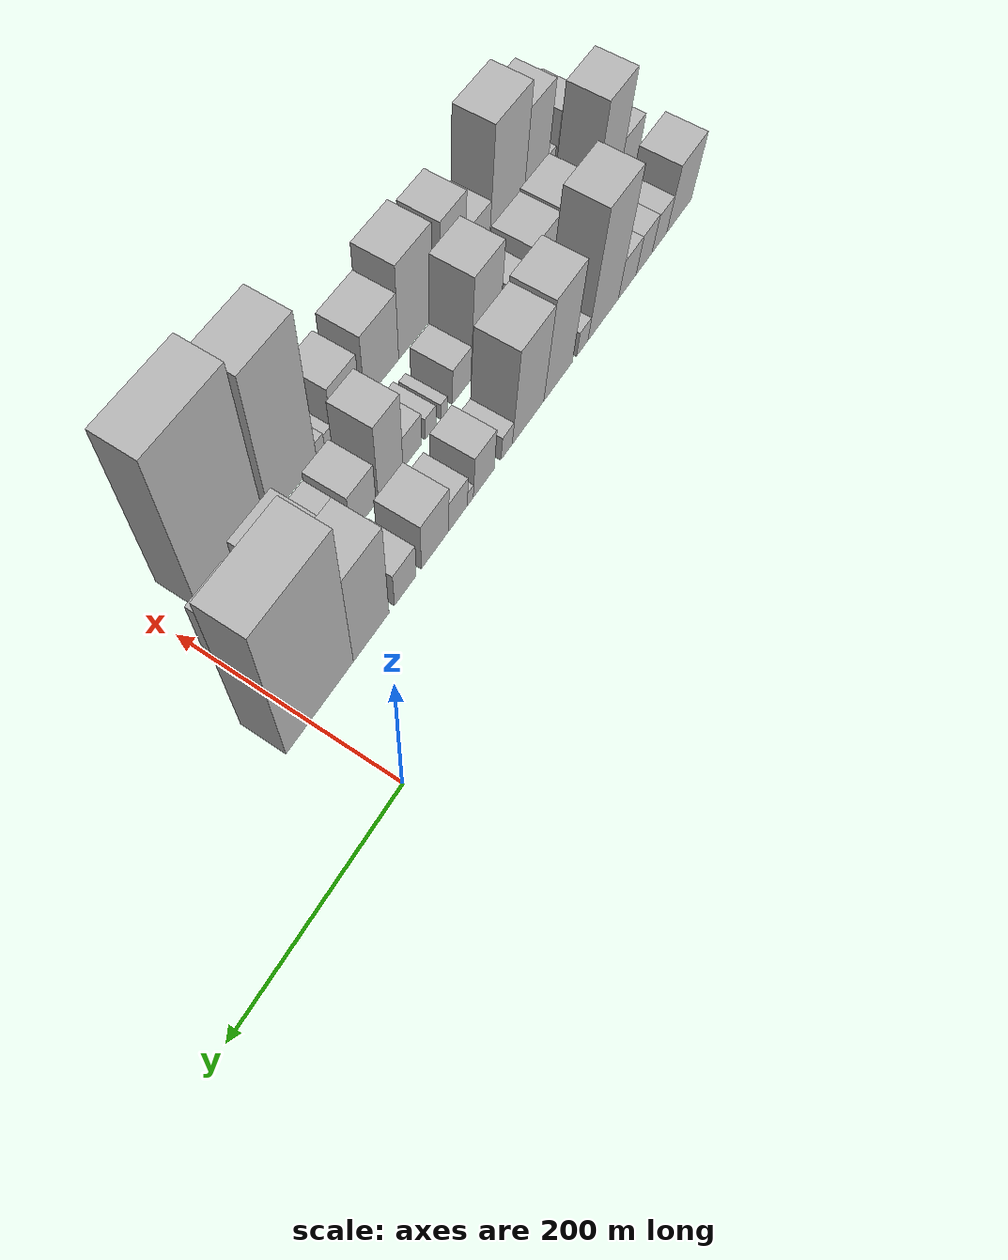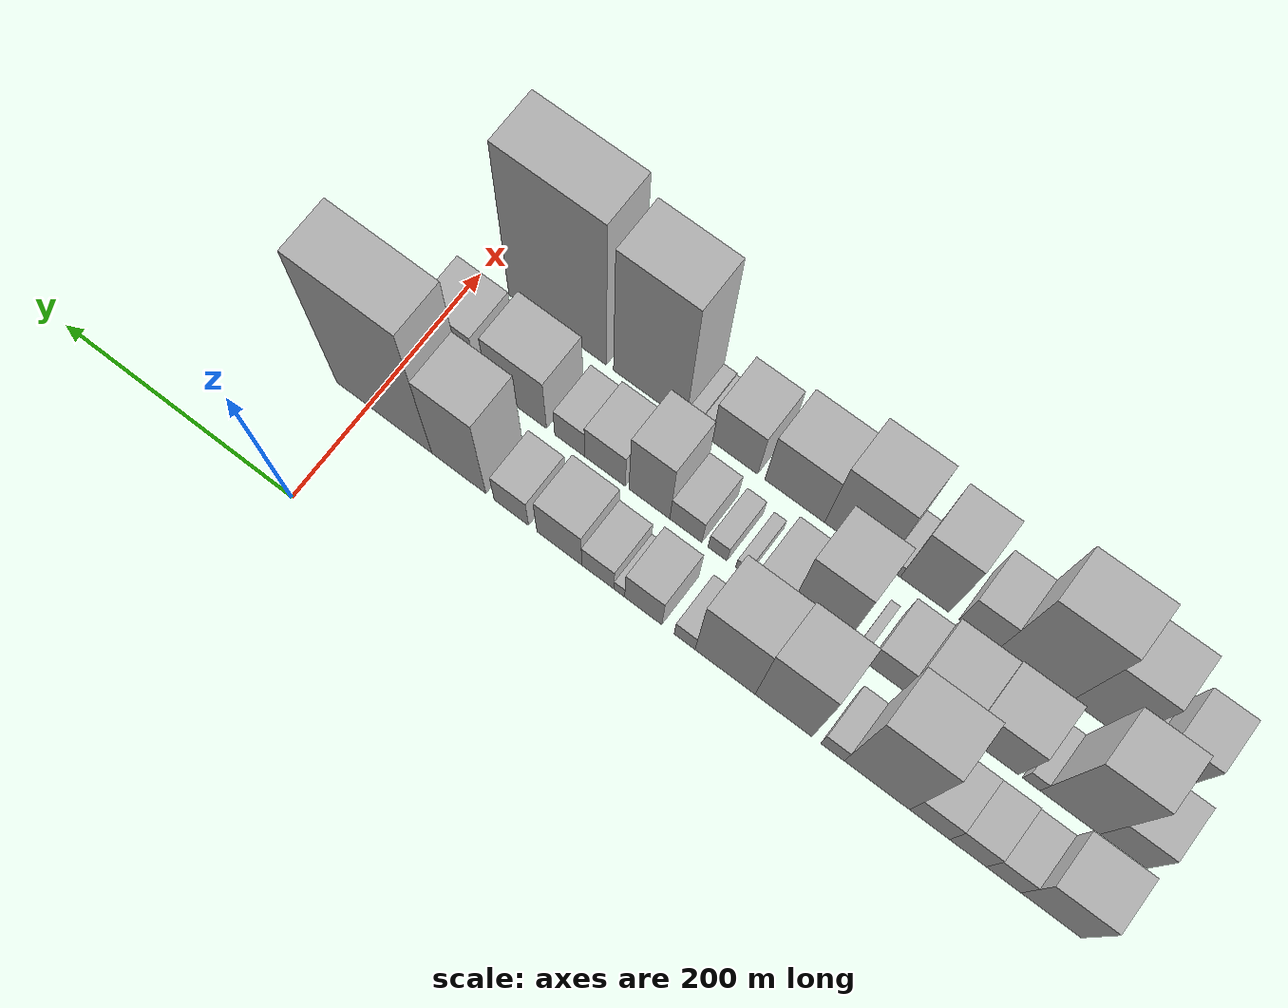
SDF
<sdf version="1.6">
 <world name="default">
  <model name="building_1">
   <static>1</static>
   <pose>100.0000 -548.4914 0 0.000000 0.000000 0.000000</pose>
   <link name="link">
    <pose>0 0 42.00 0 0 0</pose>
    <collision name="collision"><geometry><box><size>40.0000 45.0173 84.0000</size></box></geometry></collision>
    <visual name="visual">
     <cast_shadows>0</cast_shadows>
     <geometry><box><size>40.0000 45.0173 84.0000</size></box></geometry>
     <material>
      <script>
       <uri>model://HANNAS_wall/materials/scripts</uri>
       <uri>model://HANNAS_wall/materials/textures</uri>
       <name>vrc/HANNAS_wall</name>
      </script>
     </material>
    </visual>
   </link>
  </model>
  <model name="building_2">
   <static>1</static>
   <pose>100.0000 -512.8878 0 0.000000 0.000000 0.000000</pose>
   <link name="link">
    <pose>0 0 24.00 0 0 0</pose>
    <collision name="collision"><geometry><box><size>40.0000 26.1899 48.0000</size></box></geometry></collision>
    <visual name="visual">
     <cast_shadows>0</cast_shadows>
     <geometry><box><size>40.0000 26.1899 48.0000</size></box></geometry>
     <material>
      <script>
       <uri>model://HANNAS_wall/materials/scripts</uri>
       <uri>model://HANNAS_wall/materials/textures</uri>
       <name>vrc/HANNAS_wall</name>
      </script>
     </material>
    </visual>
   </link>
  </model>
  <model name="building_3">
   <static>1</static>
   <pose>100.0000 -485.8884 0 0.000000 0.000000 0.000000</pose>
   <link name="link">
    <pose>0 0 25.50 0 0 0</pose>
    <collision name="collision"><geometry><box><size>40.0000 27.8088 51.0000</size></box></geometry></collision>
    <visual name="visual">
     <cast_shadows>0</cast_shadows>
     <geometry><box><size>40.0000 27.8088 51.0000</size></box></geometry>
     <material>
      <script>
       <uri>model://HANNAS_wall/materials/scripts</uri>
       <uri>model://HANNAS_wall/materials/textures</uri>
       <name>vrc/HANNAS_wall</name>
      </script>
     </material>
    </visual>
   </link>
  </model>
  <model name="building_4">
   <static>1</static>
   <pose>100.0000 -456.7219 0 0.000000 0.000000 0.000000</pose>
   <link name="link">
    <pose>0 0 25.50 0 0 0</pose>
    <collision name="collision"><geometry><box><size>40.0000 30.5241 51.0000</size></box></geometry></collision>
    <visual name="visual">
     <cast_shadows>0</cast_shadows>
     <geometry><box><size>40.0000 30.5241 51.0000</size></box></geometry>
     <material>
      <script>
       <uri>model://HANNAS_wall/materials/scripts</uri>
       <uri>model://HANNAS_wall/materials/textures</uri>
       <name>vrc/HANNAS_wall</name>
      </script>
     </material>
    </visual>
   </link>
  </model>
  <model name="building_5">
   <static>1</static>
   <pose>100.0000 -416.1338 0 0.000000 0.000000 0.000000</pose>
   <link name="link">
    <pose>0 0 82.50 0 0 0</pose>
    <collision name="collision"><geometry><box><size>40.0000 50.6523 165.0000</size></box></geometry></collision>
    <visual name="visual">
     <cast_shadows>0</cast_shadows>
     <geometry><box><size>40.0000 50.6523 165.0000</size></box></geometry>
     <material>
      <script>
       <uri>model://HANNAS_wall/materials/scripts</uri>
       <uri>model://HANNAS_wall/materials/textures</uri>
       <name>vrc/HANNAS_wall</name>
      </script>
     </material>
    </visual>
   </link>
  </model>
  <model name="building_6">
   <static>1</static>
   <pose>100.0000 -381.6510 0 0.000000 0.000000 0.000000</pose>
   <link name="link">
    <pose>0 0 16.50 0 0 0</pose>
    <collision name="collision"><geometry><box><size>40.0000 18.3132 33.0000</size></box></geometry></collision>
    <visual name="visual">
     <cast_shadows>0</cast_shadows>
     <geometry><box><size>40.0000 18.3132 33.0000</size></box></geometry>
     <material>
      <script>
       <uri>model://HANNAS_wall/materials/scripts</uri>
       <uri>model://HANNAS_wall/materials/textures</uri>
       <name>vrc/HANNAS_wall</name>
      </script>
     </material>
    </visual>
   </link>
  </model>
  <model name="building_7">
   <static>1</static>
   <pose>100.0000 -343.0334 0 0.000000 0.000000 0.000000</pose>
   <link name="link">
    <pose>0 0 67.50 0 0 0</pose>
    <collision name="collision"><geometry><box><size>40.0000 44.9220 135.0000</size></box></geometry></collision>
    <visual name="visual">
     <cast_shadows>0</cast_shadows>
     <geometry><box><size>40.0000 44.9220 135.0000</size></box></geometry>
     <material>
      <script>
       <uri>model://HANNAS_wall/materials/scripts</uri>
       <uri>model://HANNAS_wall/materials/textures</uri>
       <name>vrc/HANNAS_wall</name>
      </script>
     </material>
    </visual>
   </link>
  </model>
  <model name="building_8">
   <static>1</static>
   <pose>100.0000 -296.5302 0 0.000000 0.000000 0.000000</pose>
   <link name="link">
    <pose>0 0 64.50 0 0 0</pose>
    <collision name="collision"><geometry><box><size>40.0000 48.0845 129.0000</size></box></geometry></collision>
    <visual name="visual">
     <cast_shadows>0</cast_shadows>
     <geometry><box><size>40.0000 48.0845 129.0000</size></box></geometry>
     <material>
      <script>
       <uri>model://HANNAS_wall/materials/scripts</uri>
       <uri>model://HANNAS_wall/materials/textures</uri>
       <name>vrc/HANNAS_wall</name>
      </script>
     </material>
    </visual>
   </link>
  </model>
  <model name="building_9">
   <static>1</static>
   <pose>100.0000 -264.0532 0 0.000000 0.000000 0.000000</pose>
   <link name="link">
    <pose>0 0 16.50 0 0 0</pose>
    <collision name="collision"><geometry><box><size>40.0000 16.8695 33.0000</size></box></geometry></collision>
    <visual name="visual">
     <cast_shadows>0</cast_shadows>
     <geometry><box><size>40.0000 16.8695 33.0000</size></box></geometry>
     <material>
      <script>
       <uri>model://HANNAS_wall/materials/scripts</uri>
       <uri>model://HANNAS_wall/materials/textures</uri>
       <name>vrc/HANNAS_wall</name>
      </script>
     </material>
    </visual>
   </link>
  </model>
  <model name="building_10">
   <static>1</static>
   <pose>100.0000 -230.4806 0 0.000000 0.000000 0.000000</pose>
   <link name="link">
    <pose>0 0 30.00 0 0 0</pose>
    <collision name="collision"><geometry><box><size>40.0000 30.2757 60.0000</size></box></geometry></collision>
    <visual name="visual">
     <cast_shadows>0</cast_shadows>
     <geometry><box><size>40.0000 30.2757 60.0000</size></box></geometry>
     <material>
      <script>
       <uri>model://HANNAS_wall/materials/scripts</uri>
       <uri>model://HANNAS_wall/materials/textures</uri>
       <name>vrc/HANNAS_wall</name>
      </script>
     </material>
    </visual>
   </link>
  </model>
  <model name="building_11">
   <static>1</static>
   <pose>100.0000 -211.0140 0 0.000000 0.000000 0.000000</pose>
   <link name="link">
    <pose>0 0 10.50 0 0 0</pose>
    <collision name="collision"><geometry><box><size>40.0000 8.6574 21.0000</size></box></geometry></collision>
    <visual name="visual">
     <cast_shadows>0</cast_shadows>
     <geometry><box><size>40.0000 8.6574 21.0000</size></box></geometry>
     <material>
      <script>
       <uri>model://HANNAS_wall/materials/scripts</uri>
       <uri>model://HANNAS_wall/materials/textures</uri>
       <name>vrc/HANNAS_wall</name>
      </script>
     </material>
    </visual>
   </link>
  </model>
  <model name="building_12">
   <static>1</static>
   <pose>100.0000 -193.4829 0 0.000000 0.000000 0.000000</pose>
   <link name="link">
    <pose>0 0 22.50 0 0 0</pose>
    <collision name="collision"><geometry><box><size>40.0000 26.4049 45.0000</size></box></geometry></collision>
    <visual name="visual">
     <cast_shadows>0</cast_shadows>
     <geometry><box><size>40.0000 26.4049 45.0000</size></box></geometry>
     <material>
      <script>
       <uri>model://HANNAS_wall/materials/scripts</uri>
       <uri>model://HANNAS_wall/materials/textures</uri>
       <name>vrc/HANNAS_wall</name>
      </script>
     </material>
    </visual>
   </link>
  </model>
  <model name="building_13">
   <static>1</static>
   <pose>100.0000 -161.5967 0 0.000000 0.000000 0.000000</pose>
   <link name="link">
    <pose>0 0 34.50 0 0 0</pose>
    <collision name="collision"><geometry><box><size>40.0000 37.3676 69.0000</size></box></geometry></collision>
    <visual name="visual">
     <cast_shadows>0</cast_shadows>
     <geometry><box><size>40.0000 37.3676 69.0000</size></box></geometry>
     <material>
      <script>
       <uri>model://HANNAS_wall/materials/scripts</uri>
       <uri>model://HANNAS_wall/materials/textures</uri>
       <name>vrc/HANNAS_wall</name>
      </script>
     </material>
    </visual>
   </link>
  </model>
  <model name="building_14">
   <static>1</static>
   <pose>100.0000 -121.5014 0 0.000000 0.000000 0.000000</pose>
   <link name="link">
    <pose>0 0 25.50 0 0 0</pose>
    <collision name="collision"><geometry><box><size>40.0000 28.8231 51.0000</size></box></geometry></collision>
    <visual name="visual">
     <cast_shadows>0</cast_shadows>
     <geometry><box><size>40.0000 28.8231 51.0000</size></box></geometry>
     <material>
      <script>
       <uri>model://HANNAS_wall/materials/scripts</uri>
       <uri>model://HANNAS_wall/materials/textures</uri>
       <name>vrc/HANNAS_wall</name>
      </script>
     </material>
    </visual>
   </link>
  </model>
  <model name="building_15">
   <static>1</static>
   <pose>100.0000 -77.2038 0 0.000000 0.000000 0.000000</pose>
   <link name="link">
    <pose>0 0 70.50 0 0 0</pose>
    <collision name="collision"><geometry><box><size>40.0000 45.7720 141.0000</size></box></geometry></collision>
    <visual name="visual">
     <cast_shadows>0</cast_shadows>
     <geometry><box><size>40.0000 45.7720 141.0000</size></box></geometry>
     <material>
      <script>
       <uri>model://HANNAS_wall/materials/scripts</uri>
       <uri>model://HANNAS_wall/materials/textures</uri>
       <name>vrc/HANNAS_wall</name>
      </script>
     </material>
    </visual>
   </link>
  </model>
  <model name="building_16">
   <static>1</static>
   <pose>100.0000 -13.2444 0 0.000000 0.000000 0.000000</pose>
   <link name="link">
    <pose>0 0 108.00 0 0 0</pose>
    <collision name="collision"><geometry><box><size>40.0000 82.1468 216.0000</size></box></geometry></collision>
    <visual name="visual">
     <cast_shadows>0</cast_shadows>
     <geometry><box><size>40.0000 82.1468 216.0000</size></box></geometry>
     <material>
      <script>
       <uri>model://HANNAS_wall/materials/scripts</uri>
       <uri>model://HANNAS_wall/materials/textures</uri>
       <name>vrc/HANNAS_wall</name>
      </script>
     </material>
    </visual>
   </link>
  </model>
  <model name="building_30">
   <static>1</static>
   <pose>160.0000 -562.5700 0 0.000000 0.000000 0.000000</pose>
   <link name="link">
    <pose>0 0 31.50 0 0 0</pose>
    <collision name="collision"><geometry><box><size>40.0000 34.8599 63.0000</size></box></geometry></collision>
    <visual name="visual">
     <cast_shadows>0</cast_shadows>
     <geometry><box><size>40.0000 34.8599 63.0000</size></box></geometry>
     <material>
      <script>
       <uri>model://HANNAS_wall/materials/scripts</uri>
       <uri>model://HANNAS_wall/materials/textures</uri>
       <name>vrc/HANNAS_wall</name>
      </script>
     </material>
    </visual>
   </link>
  </model>
  <model name="building_31">
   <static>1</static>
   <pose>160.0000 -522.5923 0 0.000000 0.000000 0.000000</pose>
   <link name="link">
    <pose>0 0 72.00 0 0 0</pose>
    <collision name="collision"><geometry><box><size>40.0000 45.0955 144.0000</size></box></geometry></collision>
    <visual name="visual">
     <cast_shadows>0</cast_shadows>
     <geometry><box><size>40.0000 45.0955 144.0000</size></box></geometry>
     <material>
      <script>
       <uri>model://HANNAS_wall/materials/scripts</uri>
       <uri>model://HANNAS_wall/materials/textures</uri>
       <name>vrc/HANNAS_wall</name>
      </script>
     </material>
    </visual>
   </link>
  </model>
  <model name="building_32">
   <static>1</static>
   <pose>160.0000 -493.3652 0 0.000000 0.000000 0.000000</pose>
   <link name="link">
    <pose>0 0 13.50 0 0 0</pose>
    <collision name="collision"><geometry><box><size>40.0000 13.3587 27.0000</size></box></geometry></collision>
    <visual name="visual">
     <cast_shadows>0</cast_shadows>
     <geometry><box><size>40.0000 13.3587 27.0000</size></box></geometry>
     <material>
      <script>
       <uri>model://HANNAS_wall/materials/scripts</uri>
       <uri>model://HANNAS_wall/materials/textures</uri>
       <name>vrc/HANNAS_wall</name>
      </script>
     </material>
    </visual>
   </link>
  </model>
  <model name="building_33">
   <static>1</static>
   <pose>160.0000 -461.1249 0 0.000000 0.000000 0.000000</pose>
   <link name="link">
    <pose>0 0 39.00 0 0 0</pose>
    <collision name="collision"><geometry><box><size>40.0000 45.1219 78.0000</size></box></geometry></collision>
    <visual name="visual">
     <cast_shadows>0</cast_shadows>
     <geometry><box><size>40.0000 45.1219 78.0000</size></box></geometry>
     <material>
      <script>
       <uri>model://HANNAS_wall/materials/scripts</uri>
       <uri>model://HANNAS_wall/materials/textures</uri>
       <name>vrc/HANNAS_wall</name>
      </script>
     </material>
    </visual>
   </link>
  </model>
  <model name="building_34">
   <static>1</static>
   <pose>160.0000 -416.7266 0 0.000000 0.000000 0.000000</pose>
   <link name="link">
    <pose>0 0 37.50 0 0 0</pose>
    <collision name="collision"><geometry><box><size>40.0000 43.6748 75.0000</size></box></geometry></collision>
    <visual name="visual">
     <cast_shadows>0</cast_shadows>
     <geometry><box><size>40.0000 43.6748 75.0000</size></box></geometry>
     <material>
      <script>
       <uri>model://HANNAS_wall/materials/scripts</uri>
       <uri>model://HANNAS_wall/materials/textures</uri>
       <name>vrc/HANNAS_wall</name>
      </script>
     </material>
    </visual>
   </link>
  </model>
  <model name="building_35">
   <static>1</static>
   <pose>160.0000 -380.7941 0 0.000000 0.000000 0.000000</pose>
   <link name="link">
    <pose>0 0 27.00 0 0 0</pose>
    <collision name="collision"><geometry><box><size>40.0000 28.1901 54.0000</size></box></geometry></collision>
    <visual name="visual">
     <cast_shadows>0</cast_shadows>
     <geometry><box><size>40.0000 28.1901 54.0000</size></box></geometry>
     <material>
      <script>
       <uri>model://HANNAS_wall/materials/scripts</uri>
       <uri>model://HANNAS_wall/materials/textures</uri>
       <name>vrc/HANNAS_wall</name>
      </script>
     </material>
    </visual>
   </link>
  </model>
  <model name="building_36">
   <static>1</static>
   <pose>160.0000 -358.0864 0 0.000000 0.000000 0.000000</pose>
   <link name="link">
    <pose>0 0 7.50 0 0 0</pose>
    <collision name="collision"><geometry><box><size>40.0000 7.2253 15.0000</size></box></geometry></collision>
    <visual name="visual">
     <cast_shadows>0</cast_shadows>
     <geometry><box><size>40.0000 7.2253 15.0000</size></box></geometry>
     <material>
      <script>
       <uri>model://HANNAS_wall/materials/scripts</uri>
       <uri>model://HANNAS_wall/materials/textures</uri>
       <name>vrc/HANNAS_wall</name>
      </script>
     </material>
    </visual>
   </link>
  </model>
  <model name="building_37">
   <static>1</static>
   <pose>160.0000 -326.3015 0 0.000000 0.000000 0.000000</pose>
   <link name="link">
    <pose>0 0 67.50 0 0 0</pose>
    <collision name="collision"><geometry><box><size>40.0000 42.3445 135.0000</size></box></geometry></collision>
    <visual name="visual">
     <cast_shadows>0</cast_shadows>
     <geometry><box><size>40.0000 42.3445 135.0000</size></box></geometry>
     <material>
      <script>
       <uri>model://HANNAS_wall/materials/scripts</uri>
       <uri>model://HANNAS_wall/materials/textures</uri>
       <name>vrc/HANNAS_wall</name>
      </script>
     </material>
    </visual>
   </link>
  </model>
  <model name="building_38">
   <static>1</static>
   <pose>160.0000 -291.4455 0 0.000000 0.000000 0.000000</pose>
   <link name="link">
    <pose>0 0 24.00 0 0 0</pose>
    <collision name="collision"><geometry><box><size>40.0000 27.3674 48.0000</size></box></geometry></collision>
    <visual name="visual">
     <cast_shadows>0</cast_shadows>
     <geometry><box><size>40.0000 27.3674 48.0000</size></box></geometry>
     <material>
      <script>
       <uri>model://HANNAS_wall/materials/scripts</uri>
       <uri>model://HANNAS_wall/materials/textures</uri>
       <name>vrc/HANNAS_wall</name>
      </script>
     </material>
    </visual>
   </link>
  </model>
  <model name="building_39">
   <static>1</static>
   <pose>160.0000 -265.8686 0 0.000000 0.000000 0.000000</pose>
   <link name="link">
    <pose>0 0 10.50 0 0 0</pose>
    <collision name="collision"><geometry><box><size>40.0000 9.7864 21.0000</size></box></geometry></collision>
    <visual name="visual">
     <cast_shadows>0</cast_shadows>
     <geometry><box><size>40.0000 9.7864 21.0000</size></box></geometry>
     <material>
      <script>
       <uri>model://HANNAS_wall/materials/scripts</uri>
       <uri>model://HANNAS_wall/materials/textures</uri>
       <name>vrc/HANNAS_wall</name>
      </script>
     </material>
    </visual>
   </link>
  </model>
  <model name="building_40">
   <static>1</static>
   <pose>160.0000 -246.2272 0 0.000000 0.000000 0.000000</pose>
   <link name="link">
    <pose>0 0 15.00 0 0 0</pose>
    <collision name="collision"><geometry><box><size>40.0000 15.4964 30.0000</size></box></geometry></collision>
    <visual name="visual">
     <cast_shadows>0</cast_shadows>
     <geometry><box><size>40.0000 15.4964 30.0000</size></box></geometry>
     <material>
      <script>
       <uri>model://HANNAS_wall/materials/scripts</uri>
       <uri>model://HANNAS_wall/materials/textures</uri>
       <name>vrc/HANNAS_wall</name>
      </script>
     </material>
    </visual>
   </link>
  </model>
  <model name="building_41">
   <static>1</static>
   <pose>160.0000 -220.2625 0 0.000000 0.000000 0.000000</pose>
   <link name="link">
    <pose>0 0 22.50 0 0 0</pose>
    <collision name="collision"><geometry><box><size>40.0000 26.4329 45.0000</size></box></geometry></collision>
    <visual name="visual">
     <cast_shadows>0</cast_shadows>
     <geometry><box><size>40.0000 26.4329 45.0000</size></box></geometry>
     <material>
      <script>
       <uri>model://HANNAS_wall/materials/scripts</uri>
       <uri>model://HANNAS_wall/materials/textures</uri>
       <name>vrc/HANNAS_wall</name>
      </script>
     </material>
    </visual>
   </link>
  </model>
  <model name="building_42">
   <static>1</static>
   <pose>160.0000 -190.1142 0 0.000000 0.000000 0.000000</pose>
   <link name="link">
    <pose>0 0 54.00 0 0 0</pose>
    <collision name="collision"><geometry><box><size>40.0000 33.8638 108.0000</size></box></geometry></collision>
    <visual name="visual">
     <cast_shadows>0</cast_shadows>
     <geometry><box><size>40.0000 33.8638 108.0000</size></box></geometry>
     <material>
      <script>
       <uri>model://HANNAS_wall/materials/scripts</uri>
       <uri>model://HANNAS_wall/materials/textures</uri>
       <name>vrc/HANNAS_wall</name>
      </script>
     </material>
    </visual>
   </link>
  </model>
  <model name="building_43">
   <static>1</static>
   <pose>160.0000 -153.3851 0 0.000000 0.000000 0.000000</pose>
   <link name="link">
    <pose>0 0 30.00 0 0 0</pose>
    <collision name="collision"><geometry><box><size>40.0000 33.5944 60.0000</size></box></geometry></collision>
    <visual name="visual">
     <cast_shadows>0</cast_shadows>
     <geometry><box><size>40.0000 33.5944 60.0000</size></box></geometry>
     <material>
      <script>
       <uri>model://HANNAS_wall/materials/scripts</uri>
       <uri>model://HANNAS_wall/materials/textures</uri>
       <name>vrc/HANNAS_wall</name>
      </script>
     </material>
    </visual>
   </link>
  </model>
  <model name="building_44">
   <static>1</static>
   <pose>160.0000 -123.8893 0 0.000000 0.000000 0.000000</pose>
   <link name="link">
    <pose>0 0 24.00 0 0 0</pose>
    <collision name="collision"><geometry><box><size>40.0000 25.3971 48.0000</size></box></geometry></collision>
    <visual name="visual">
     <cast_shadows>0</cast_shadows>
     <geometry><box><size>40.0000 25.3971 48.0000</size></box></geometry>
     <material>
      <script>
       <uri>model://HANNAS_wall/materials/scripts</uri>
       <uri>model://HANNAS_wall/materials/textures</uri>
       <name>vrc/HANNAS_wall</name>
      </script>
     </material>
    </visual>
   </link>
  </model>
  <model name="building_45">
   <static>1</static>
   <pose>160.0000 -79.0148 0 0.000000 0.000000 0.000000</pose>
   <link name="link">
    <pose>0 0 43.50 0 0 0</pose>
    <collision name="collision"><geometry><box><size>40.0000 50.3519 87.0000</size></box></geometry></collision>
    <visual name="visual">
     <cast_shadows>0</cast_shadows>
     <geometry><box><size>40.0000 50.3519 87.0000</size></box></geometry>
     <material>
      <script>
       <uri>model://HANNAS_wall/materials/scripts</uri>
       <uri>model://HANNAS_wall/materials/textures</uri>
       <name>vrc/HANNAS_wall</name>
      </script>
     </material>
    </visual>
   </link>
  </model>
  <model name="building_46">
   <static>1</static>
   <pose>160.0000 -24.1248 0 0.000000 0.000000 0.000000</pose>
   <link name="link">
    <pose>0 0 36.00 0 0 0</pose>
    <collision name="collision"><geometry><box><size>40.0000 41.4281 72.0000</size></box></geometry></collision>
    <visual name="visual">
     <cast_shadows>0</cast_shadows>
     <geometry><box><size>40.0000 41.4281 72.0000</size></box></geometry>
     <material>
      <script>
       <uri>model://HANNAS_wall/materials/scripts</uri>
       <uri>model://HANNAS_wall/materials/textures</uri>
       <name>vrc/HANNAS_wall</name>
      </script>
     </material>
    </visual>
   </link>
  </model>
  <model name="building_60">
   <static>1</static>
   <pose>220.0000 -556.4989 0 0.000000 0.000000 0.000000</pose>
   <link name="link">
    <pose>0 0 33.00 0 0 0</pose>
    <collision name="collision"><geometry><box><size>40.0000 33.0022 66.0000</size></box></geometry></collision>
    <visual name="visual">
     <cast_shadows>0</cast_shadows>
     <geometry><box><size>40.0000 33.0022 66.0000</size></box></geometry>
     <material>
      <script>
       <uri>model://HANNAS_wall/materials/scripts</uri>
       <uri>model://HANNAS_wall/materials/textures</uri>
       <name>vrc/HANNAS_wall</name>
      </script>
     </material>
    </visual>
   </link>
  </model>
  <model name="building_61">
   <static>1</static>
   <pose>220.0000 -530.4347 0 0.000000 0.000000 0.000000</pose>
   <link name="link">
    <pose>0 0 13.50 0 0 0</pose>
    <collision name="collision"><geometry><box><size>40.0000 13.1262 27.0000</size></box></geometry></collision>
    <visual name="visual">
     <cast_shadows>0</cast_shadows>
     <geometry><box><size>40.0000 13.1262 27.0000</size></box></geometry>
     <material>
      <script>
       <uri>model://HANNAS_wall/materials/scripts</uri>
       <uri>model://HANNAS_wall/materials/textures</uri>
       <name>vrc/HANNAS_wall</name>
      </script>
     </material>
    </visual>
   </link>
  </model>
  <model name="building_62">
   <static>1</static>
   <pose>220.0000 -503.9881 0 0.000000 0.000000 0.000000</pose>
   <link name="link">
    <pose>0 0 58.50 0 0 0</pose>
    <collision name="collision"><geometry><box><size>40.0000 39.7670 117.0000</size></box></geometry></collision>
    <visual name="visual">
     <cast_shadows>0</cast_shadows>
     <geometry><box><size>40.0000 39.7670 117.0000</size></box></geometry>
     <material>
      <script>
       <uri>model://HANNAS_wall/materials/scripts</uri>
       <uri>model://HANNAS_wall/materials/textures</uri>
       <name>vrc/HANNAS_wall</name>
      </script>
     </material>
    </visual>
   </link>
  </model>
  <model name="building_63">
   <static>1</static>
   <pose>220.0000 -456.1946 0 0.000000 0.000000 0.000000</pose>
   <link name="link">
    <pose>0 0 73.50 0 0 0</pose>
    <collision name="collision"><geometry><box><size>40.0000 55.8201 147.0000</size></box></geometry></collision>
    <visual name="visual">
     <cast_shadows>0</cast_shadows>
     <geometry><box><size>40.0000 55.8201 147.0000</size></box></geometry>
     <material>
      <script>
       <uri>model://HANNAS_wall/materials/scripts</uri>
       <uri>model://HANNAS_wall/materials/textures</uri>
       <name>vrc/HANNAS_wall</name>
      </script>
     </material>
    </visual>
   </link>
  </model>
  <model name="building_64">
   <static>1</static>
   <pose>220.0000 -412.5962 0 0.000000 0.000000 0.000000</pose>
   <link name="link">
    <pose>0 0 30.00 0 0 0</pose>
    <collision name="collision"><geometry><box><size>40.0000 31.3767 60.0000</size></box></geometry></collision>
    <visual name="visual">
     <cast_shadows>0</cast_shadows>
     <geometry><box><size>40.0000 31.3767 60.0000</size></box></geometry>
     <material>
      <script>
       <uri>model://HANNAS_wall/materials/scripts</uri>
       <uri>model://HANNAS_wall/materials/textures</uri>
       <name>vrc/HANNAS_wall</name>
      </script>
     </material>
    </visual>
   </link>
  </model>
  <model name="building_65">
   <static>1</static>
   <pose>220.0000 -369.6496 0 0.000000 0.000000 0.000000</pose>
   <link name="link">
    <pose>0 0 55.50 0 0 0</pose>
    <collision name="collision"><geometry><box><size>40.0000 38.5164 111.0000</size></box></geometry></collision>
    <visual name="visual">
     <cast_shadows>0</cast_shadows>
     <geometry><box><size>40.0000 38.5164 111.0000</size></box></geometry>
     <material>
      <script>
       <uri>model://HANNAS_wall/materials/scripts</uri>
       <uri>model://HANNAS_wall/materials/textures</uri>
       <name>vrc/HANNAS_wall</name>
      </script>
     </material>
    </visual>
   </link>
  </model>
  <model name="building_66">
   <static>1</static>
   <pose>220.0000 -344.5917 0 0.000000 0.000000 0.000000</pose>
   <link name="link">
    <pose>0 0 12.00 0 0 0</pose>
    <collision name="collision"><geometry><box><size>40.0000 11.5995 24.0000</size></box></geometry></collision>
    <visual name="visual">
     <cast_shadows>0</cast_shadows>
     <geometry><box><size>40.0000 11.5995 24.0000</size></box></geometry>
     <material>
      <script>
       <uri>model://HANNAS_wall/materials/scripts</uri>
       <uri>model://HANNAS_wall/materials/textures</uri>
       <name>vrc/HANNAS_wall</name>
      </script>
     </material>
    </visual>
   </link>
  </model>
  <model name="building_67">
   <static>1</static>
   <pose>220.0000 -314.2161 0 0.000000 0.000000 0.000000</pose>
   <link name="link">
    <pose>0 0 61.50 0 0 0</pose>
    <collision name="collision"><geometry><box><size>40.0000 49.1517 123.0000</size></box></geometry></collision>
    <visual name="visual">
     <cast_shadows>0</cast_shadows>
     <geometry><box><size>40.0000 49.1517 123.0000</size></box></geometry>
     <material>
      <script>
       <uri>model://HANNAS_wall/materials/scripts</uri>
       <uri>model://HANNAS_wall/materials/textures</uri>
       <name>vrc/HANNAS_wall</name>
      </script>
     </material>
    </visual>
   </link>
  </model>
  <model name="building_68">
   <static>1</static>
   <pose>220.0000 -265.3292 0 0.000000 0.000000 0.000000</pose>
   <link name="link">
    <pose>0 0 45.00 0 0 0</pose>
    <collision name="collision"><geometry><box><size>40.0000 48.6222 90.0000</size></box></geometry></collision>
    <visual name="visual">
     <cast_shadows>0</cast_shadows>
     <geometry><box><size>40.0000 48.6222 90.0000</size></box></geometry>
     <material>
      <script>
       <uri>model://HANNAS_wall/materials/scripts</uri>
       <uri>model://HANNAS_wall/materials/textures</uri>
       <name>vrc/HANNAS_wall</name>
      </script>
     </material>
    </visual>
   </link>
  </model>
  <model name="building_69">
   <static>1</static>
   <pose>220.0000 -216.0289 0 0.000000 0.000000 0.000000</pose>
   <link name="link">
    <pose>0 0 37.50 0 0 0</pose>
    <collision name="collision"><geometry><box><size>40.0000 37.9783 75.0000</size></box></geometry></collision>
    <visual name="visual">
     <cast_shadows>0</cast_shadows>
     <geometry><box><size>40.0000 37.9783 75.0000</size></box></geometry>
     <material>
      <script>
       <uri>model://HANNAS_wall/materials/scripts</uri>
       <uri>model://HANNAS_wall/materials/textures</uri>
       <name>vrc/HANNAS_wall</name>
      </script>
     </material>
    </visual>
   </link>
  </model>
  <model name="building_70">
   <static>1</static>
   <pose>220.0000 -191.7417 0 0.000000 0.000000 0.000000</pose>
   <link name="link">
    <pose>0 0 12.00 0 0 0</pose>
    <collision name="collision"><geometry><box><size>40.0000 10.5962 24.0000</size></box></geometry></collision>
    <visual name="visual">
     <cast_shadows>0</cast_shadows>
     <geometry><box><size>40.0000 10.5962 24.0000</size></box></geometry>
     <material>
      <script>
       <uri>model://HANNAS_wall/materials/scripts</uri>
       <uri>model://HANNAS_wall/materials/textures</uri>
       <name>vrc/HANNAS_wall</name>
      </script>
     </material>
    </visual>
   </link>
  </model>
  <model name="building_71">
   <static>1</static>
   <pose>220.0000 -181.0224 0 0.000000 0.000000 0.000000</pose>
   <link name="link">
    <pose>0 0 13.50 0 0 0</pose>
    <collision name="collision"><geometry><box><size>40.0000 10.8423 27.0000</size></box></geometry></collision>
    <visual name="visual">
     <cast_shadows>0</cast_shadows>
     <geometry><box><size>40.0000 10.8423 27.0000</size></box></geometry>
     <material>
      <script>
       <uri>model://HANNAS_wall/materials/scripts</uri>
       <uri>model://HANNAS_wall/materials/textures</uri>
       <name>vrc/HANNAS_wall</name>
      </script>
     </material>
    </visual>
   </link>
  </model>
  <model name="building_72">
   <static>1</static>
   <pose>220.0000 -145.1477 0 0.000000 0.000000 0.000000</pose>
   <link name="link">
    <pose>0 0 99.00 0 0 0</pose>
    <collision name="collision"><geometry><box><size>40.0000 60.9071 198.0000</size></box></geometry></collision>
    <visual name="visual">
     <cast_shadows>0</cast_shadows>
     <geometry><box><size>40.0000 60.9071 198.0000</size></box></geometry>
     <material>
      <script>
       <uri>model://HANNAS_wall/materials/scripts</uri>
       <uri>model://HANNAS_wall/materials/textures</uri>
       <name>vrc/HANNAS_wall</name>
      </script>
     </material>
    </visual>
   </link>
  </model>
  <model name="building_73">
   <static>1</static>
   <pose>220.0000 -66.8630 0 0.000000 0.000000 0.000000</pose>
   <link name="link">
    <pose>0 0 111.00 0 0 0</pose>
    <collision name="collision"><geometry><box><size>40.0000 83.6621 222.0000</size></box></geometry></collision>
    <visual name="visual">
     <cast_shadows>0</cast_shadows>
     <geometry><box><size>40.0000 83.6621 222.0000</size></box></geometry>
     <material>
      <script>
       <uri>model://HANNAS_wall/materials/scripts</uri>
       <uri>model://HANNAS_wall/materials/textures</uri>
       <name>vrc/HANNAS_wall</name>
      </script>
     </material>
    </visual>
   </link>
  </model>
 </world>
</sdf>
